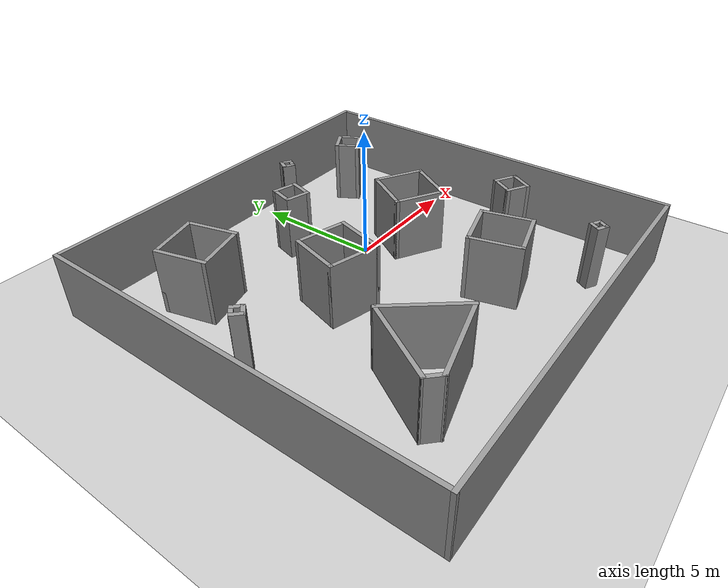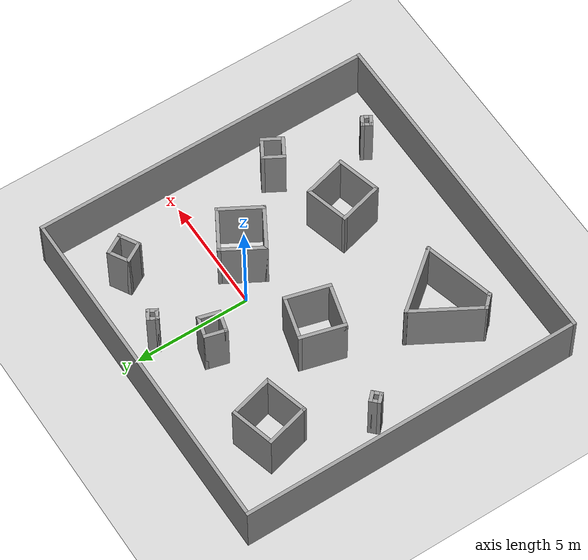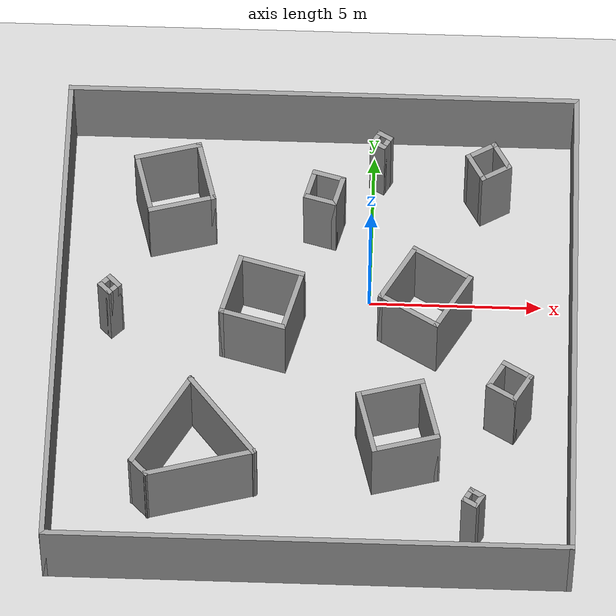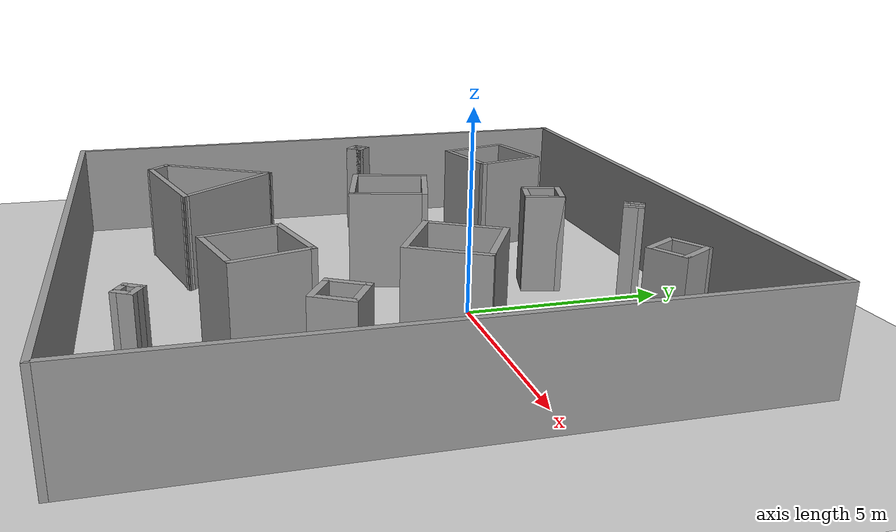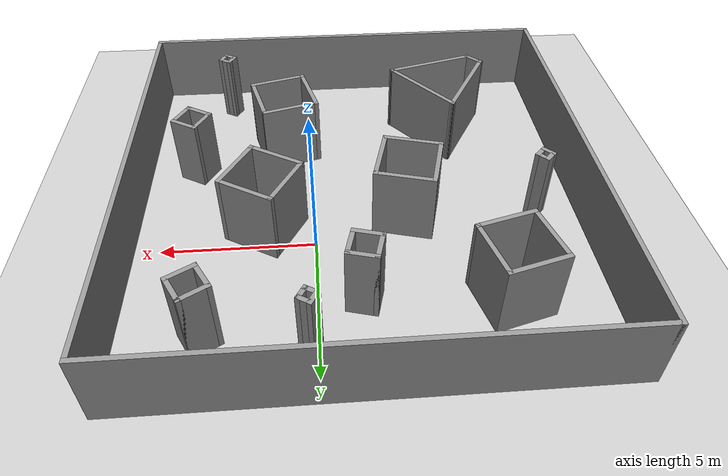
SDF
<sdf version="1.7">
 <world name="default">
  <light name="sun" type="directional">
   <pose>0 0 10 0 -0 0</pose>
   <diffuse>0.8 0.8 0.8 1</diffuse>
   <specular>0.2 0.2 0.2 1</specular>
   <attenuation>
    <range>1000</range>
    <constant>0.9</constant>
    <linear>0.01</linear>
    <quadratic>0.001</quadratic>
   </attenuation>
   <direction>-0.5 0.1 -0.9</direction>
   <spot><inner_angle>0</inner_angle><outer_angle>0</outer_angle><falloff>0</falloff></spot>
  </light>
  <model name="ground_plane">
   <static>1</static>
   <link name="link">
    <collision name="collision">
     <geometry><plane><normal>0 0 1</normal><size>100 100</size></plane></geometry>
     <surface>
      <contact><collide_bitmask>65535</collide_bitmask></contact>
      <friction><ode><mu>100</mu><mu2>50</mu2></ode></friction>
     </surface>
    </collision>
    <visual name="visual">
     <cast_shadows>0</cast_shadows>
     <geometry><plane><normal>0 0 1</normal><size>100 100</size></plane></geometry>
     <material>
      <script><uri>file://media/materials/scripts/gazebo.material</uri><name>Gazebo/Grey</name></script>
     </material>
    </visual>
   </link>
  </model>
  <gravity>0 0 -9.8</gravity>
  <magnetic_field>6e-06 2.3e-05 -4.2e-05</magnetic_field>
  <atmosphere type="adiabatic"/>
  <physics type="ode">
   <max_step_size>0.001</max_step_size>
   <real_time_factor>1</real_time_factor>
   <real_time_update_rate>1000</real_time_update_rate>
  </physics>
  <scene><ambient>0.4 0.4 0.4 1</ambient><background>0.7 0.7 0.7 1</background><shadows>1</shadows></scene>
  <audio><device>default</device></audio>
  <spherical_coordinates>
   <surface_model>EARTH_WGS84</surface_model>
   <latitude_deg>0</latitude_deg>
   <longitude_deg>0</longitude_deg>
   <elevation>0</elevation>
   <heading_deg>0</heading_deg>
  </spherical_coordinates>
  <model name="mycustom1">
   <pose>-1.52669 -1.7983 0 0 -0 0</pose>
   <link name="Wall_102">
    <collision name="Wall_102_Collision">
     <geometry><box><size>1 0.15 2.5</size></box></geometry>
     <pose>0 0 1.25 0 -0 0</pose>
    </collision>
    <visual name="Wall_102_Visual">
     <pose>0 0 1.25 0 -0 0</pose>
     <geometry><box><size>1 0.15 2.5</size></box></geometry>
     <material>
      <script><uri>file://media/materials/scripts/gazebo.material</uri><name>Gazebo/Grey</name></script>
      <ambient>1 1 1 1</ambient>
     </material>
     <meta><layer>0</layer></meta>
    </visual>
    <pose>0.018094 3.78673 0 0 -0 -0.261799</pose>
   </link>
   <link name="Wall_103">
    <collision name="Wall_103_Collision">
     <geometry><box><size>1 0.15 2.5</size></box></geometry>
     <pose>0 0 1.25 0 -0 0</pose>
    </collision>
    <visual name="Wall_103_Visual">
     <pose>0 0 1.25 0 -0 0</pose>
     <geometry><box><size>1 0.15 2.5</size></box></geometry>
     <material>
      <script><uri>file://media/materials/scripts/gazebo.material</uri><name>Gazebo/Grey</name></script>
      <ambient>1 1 1 1</ambient>
     </material>
     <meta><layer>0</layer></meta>
    </visual>
    <pose>0.53861 4.08725 0 0 -0 1.309</pose>
   </link>
   <link name="Wall_104">
    <collision name="Wall_104_Collision">
     <geometry><box><size>1 0.15 2.5</size></box></geometry>
     <pose>0 0 1.25 0 -0 0</pose>
    </collision>
    <visual name="Wall_104_Visual">
     <pose>0 0 1.25 0 -0 0</pose>
     <geometry><box><size>1 0.15 2.5</size></box></geometry>
     <material>
      <script><uri>file://media/materials/scripts/gazebo.material</uri><name>Gazebo/Grey</name></script>
      <ambient>1 1 1 1</ambient>
     </material>
     <meta><layer>0</layer></meta>
    </visual>
    <pose>0.23809 4.60777 0 0 -0 2.87979</pose>
   </link>
   <link name="Wall_105">
    <collision name="Wall_105_Collision">
     <geometry><box><size>1 0.15 2.5</size></box></geometry>
     <pose>0 0 1.25 0 -0 0</pose>
    </collision>
    <visual name="Wall_105_Visual">
     <pose>0 0 1.25 0 -0 0</pose>
     <geometry><box><size>1 0.15 2.5</size></box></geometry>
     <material>
      <script><uri>file://media/materials/scripts/gazebo.material</uri><name>Gazebo/Grey</name></script>
      <ambient>1 1 1 1</ambient>
     </material>
     <meta><layer>0</layer></meta>
    </visual>
    <pose>-0.282427 4.30725 0 0 -0 -1.8326</pose>
   </link>
   <link name="Wall_107">
    <collision name="Wall_107_Collision">
     <geometry><box><size>1 0.15 2.5</size></box></geometry>
     <pose>0 0 1.25 0 -0 0</pose>
    </collision>
    <visual name="Wall_107_Visual">
     <pose>0 0 1.25 0 -0 0</pose>
     <geometry><box><size>1 0.15 2.5</size></box></geometry>
     <material>
      <script><uri>file://media/materials/scripts/gazebo.material</uri><name>Gazebo/Grey</name></script>
      <ambient>1 1 1 1</ambient>
     </material>
     <meta><layer>0</layer></meta>
    </visual>
    <pose>4.51177 5.03242 0 0 -0 -1.0472</pose>
   </link>
   <link name="Wall_108">
    <collision name="Wall_108_Collision">
     <geometry><box><size>1 0.15 2.5</size></box></geometry>
     <pose>0 0 1.25 0 -0 0</pose>
    </collision>
    <visual name="Wall_108_Visual">
     <pose>0 0 1.25 0 -0 0</pose>
     <geometry><box><size>1 0.15 2.5</size></box></geometry>
     <material>
      <script><uri>file://media/materials/scripts/gazebo.material</uri><name>Gazebo/Grey</name></script>
      <ambient>1 1 1 1</ambient>
     </material>
     <meta><layer>0</layer></meta>
    </visual>
    <pose>5.09233 4.87685 0 0 -0 0.523599</pose>
   </link>
   <link name="Wall_109">
    <collision name="Wall_109_Collision">
     <geometry><box><size>1 0.15 2.5</size></box></geometry>
     <pose>0 0 1.25 0 -0 0</pose>
    </collision>
    <visual name="Wall_109_Visual">
     <pose>0 0 1.25 0 -0 0</pose>
     <geometry><box><size>1 0.15 2.5</size></box></geometry>
     <material>
      <script><uri>file://media/materials/scripts/gazebo.material</uri><name>Gazebo/Grey</name></script>
      <ambient>1 1 1 1</ambient>
     </material>
     <meta><layer>0</layer></meta>
    </visual>
    <pose>5.24789 5.45742 0 0 -0 2.0944</pose>
   </link>
   <link name="Wall_110">
    <collision name="Wall_110_Collision">
     <geometry><box><size>1 0.15 2.5</size></box></geometry>
     <pose>0 0 1.25 0 -0 0</pose>
    </collision>
    <visual name="Wall_110_Visual">
     <pose>0 0 1.25 0 -0 0</pose>
     <geometry><box><size>1 0.15 2.5</size></box></geometry>
     <material>
      <script><uri>file://media/materials/scripts/gazebo.material</uri><name>Gazebo/Grey</name></script>
      <ambient>1 1 1 1</ambient>
     </material>
     <meta><layer>0</layer></meta>
    </visual>
    <pose>4.66733 5.61298 0 0 -0 -2.61799</pose>
   </link>
   <link name="Wall_117">
    <collision name="Wall_117_Collision">
     <geometry><box><size>1 0.15 2.5</size></box></geometry>
     <pose>0 0 1.25 0 -0 0</pose>
    </collision>
    <visual name="Wall_117_Visual">
     <pose>0 0 1.25 0 -0 0</pose>
     <geometry><box><size>1 0.15 2.5</size></box></geometry>
     <material>
      <script><uri>file://media/materials/scripts/gazebo.material</uri><name>Gazebo/Grey</name></script>
      <ambient>1 1 1 1</ambient>
     </material>
     <meta><layer>0</layer></meta>
    </visual>
    <pose>5.2308 -1.90268 0 0 -0 -2.0944</pose>
   </link>
   <link name="Wall_118">
    <collision name="Wall_118_Collision">
     <geometry><box><size>1 0.15 2.5</size></box></geometry>
     <pose>0 0 1.25 0 -0 0</pose>
    </collision>
    <visual name="Wall_118_Visual">
     <pose>0 0 1.25 0 -0 0</pose>
     <geometry><box><size>1 0.15 2.5</size></box></geometry>
     <material>
      <script><uri>file://media/materials/scripts/gazebo.material</uri><name>Gazebo/Grey</name></script>
      <ambient>1 1 1 1</ambient>
     </material>
     <meta><layer>0</layer></meta>
    </visual>
    <pose>5.38636 -2.48324 0 0 -0 -0.523599</pose>
   </link>
   <link name="Wall_119">
    <collision name="Wall_119_Collision">
     <geometry><box><size>1 0.15 2.5</size></box></geometry>
     <pose>0 0 1.25 0 -0 0</pose>
    </collision>
    <visual name="Wall_119_Visual">
     <pose>0 0 1.25 0 -0 0</pose>
     <geometry><box><size>1 0.15 2.5</size></box></geometry>
     <material>
      <script><uri>file://media/materials/scripts/gazebo.material</uri><name>Gazebo/Grey</name></script>
      <ambient>1 1 1 1</ambient>
     </material>
     <meta><layer>0</layer></meta>
    </visual>
    <pose>5.96692 -2.32768 0 0 -0 1.0472</pose>
   </link>
   <link name="Wall_120">
    <collision name="Wall_120_Collision">
     <geometry><box><size>1 0.15 2.5</size></box></geometry>
     <pose>0 0 1.25 0 -0 0</pose>
    </collision>
    <visual name="Wall_120_Visual">
     <pose>0 0 1.25 0 -0 0</pose>
     <geometry><box><size>1 0.15 2.5</size></box></geometry>
     <material>
      <script><uri>file://media/materials/scripts/gazebo.material</uri><name>Gazebo/Grey</name></script>
      <ambient>1 1 1 1</ambient>
     </material>
     <meta><layer>0</layer></meta>
    </visual>
    <pose>5.81136 -1.74711 0 0 -0 2.61799</pose>
   </link>
   <link name="Wall_122">
    <collision name="Wall_122_Collision">
     <geometry><box><size>0.5 0.15 2.5</size></box></geometry>
     <pose>0 0 1.25 0 -0 0</pose>
    </collision>
    <visual name="Wall_122_Visual">
     <pose>0 0 1.25 0 -0 0</pose>
     <geometry><box><size>0.5 0.15 2.5</size></box></geometry>
     <material>
      <script><uri>file://media/materials/scripts/gazebo.material</uri><name>Gazebo/Grey</name></script>
      <ambient>1 1 1 1</ambient>
     </material>
     <meta><layer>0</layer></meta>
    </visual>
    <pose>-6.07066 0.590726 0 0 -0 -0.785398</pose>
   </link>
   <link name="Wall_123">
    <collision name="Wall_123_Collision">
     <geometry><box><size>0.5 0.15 2.5</size></box></geometry>
     <pose>0 0 1.25 0 -0 0</pose>
    </collision>
    <visual name="Wall_123_Visual">
     <pose>0 0 1.25 0 -0 0</pose>
     <geometry><box><size>0.5 0.15 2.5</size></box></geometry>
     <material>
      <script><uri>file://media/materials/scripts/gazebo.material</uri><name>Gazebo/Grey</name></script>
      <ambient>1 1 1 1</ambient>
     </material>
     <meta><layer>0</layer></meta>
    </visual>
    <pose>-5.82317 0.590726 0 0 -0 0.785398</pose>
   </link>
   <link name="Wall_124">
    <collision name="Wall_124_Collision">
     <geometry><box><size>0.5 0.15 2.5</size></box></geometry>
     <pose>0 0 1.25 0 -0 0</pose>
    </collision>
    <visual name="Wall_124_Visual">
     <pose>0 0 1.25 0 -0 0</pose>
     <geometry><box><size>0.5 0.15 2.5</size></box></geometry>
     <material>
      <script><uri>file://media/materials/scripts/gazebo.material</uri><name>Gazebo/Grey</name></script>
      <ambient>1 1 1 1</ambient>
     </material>
     <meta><layer>0</layer></meta>
    </visual>
    <pose>-5.82317 0.838213 0 0 -0 2.35619</pose>
   </link>
   <link name="Wall_125">
    <collision name="Wall_125_Collision">
     <geometry><box><size>0.5 0.15 2.5</size></box></geometry>
     <pose>0 0 1.25 0 -0 0</pose>
    </collision>
    <visual name="Wall_125_Visual">
     <pose>0 0 1.25 0 -0 0</pose>
     <geometry><box><size>0.5 0.15 2.5</size></box></geometry>
     <material>
      <script><uri>file://media/materials/scripts/gazebo.material</uri><name>Gazebo/Grey</name></script>
      <ambient>1 1 1 1</ambient>
     </material>
     <meta><layer>0</layer></meta>
    </visual>
    <pose>-6.07066 0.838213 0 0 -0 -2.35619</pose>
   </link>
   <link name="Wall_127">
    <collision name="Wall_127_Collision">
     <geometry><box><size>0.5 0.15 2.5</size></box></geometry>
     <pose>0 0 1.25 0 -0 0</pose>
    </collision>
    <visual name="Wall_127_Visual">
     <pose>0 0 1.25 0 -0 0</pose>
     <geometry><box><size>0.5 0.15 2.5</size></box></geometry>
     <material>
      <script><uri>file://media/materials/scripts/gazebo.material</uri><name>Gazebo/Grey</name></script>
      <ambient>1 1 1 1</ambient>
     </material>
     <meta><layer>0</layer></meta>
    </visual>
    <pose>4.48406 -5.8504 0 0 -0 -2.0944</pose>
   </link>
   <link name="Wall_128">
    <collision name="Wall_128_Collision">
     <geometry><box><size>0.5 0.15 2.5</size></box></geometry>
     <pose>0 0 1.25 0 -0 0</pose>
    </collision>
    <visual name="Wall_128_Visual">
     <pose>0 0 1.25 0 -0 0</pose>
     <geometry><box><size>0.5 0.15 2.5</size></box></geometry>
     <material>
      <script><uri>file://media/materials/scripts/gazebo.material</uri><name>Gazebo/Grey</name></script>
      <ambient>1 1 1 1</ambient>
     </material>
     <meta><layer>0</layer></meta>
    </visual>
    <pose>4.54812 -6.08946 0 0 -0 -0.523599</pose>
   </link>
   <link name="Wall_132">
    <collision name="Wall_132_Collision">
     <geometry><box><size>0.5 0.15 2.5</size></box></geometry>
     <pose>0 0 1.25 0 -0 0</pose>
    </collision>
    <visual name="Wall_132_Visual">
     <pose>0 0 1.25 0 -0 0</pose>
     <geometry><box><size>0.5 0.15 2.5</size></box></geometry>
     <material>
      <script><uri>file://media/materials/scripts/gazebo.material</uri><name>Gazebo/Grey</name></script>
      <ambient>1 1 1 1</ambient>
     </material>
     <meta><layer>0</layer></meta>
    </visual>
    <pose>4.72311 -5.78635 0 0 -0 -0.523599</pose>
   </link>
   <link name="Wall_133">
    <collision name="Wall_133_Collision">
     <geometry><box><size>0.5 0.15 2.5</size></box></geometry>
     <pose>0 0 1.25 0 -0 0</pose>
    </collision>
    <visual name="Wall_133_Visual">
     <pose>0 0 1.25 0 -0 0</pose>
     <geometry><box><size>0.5 0.15 2.5</size></box></geometry>
     <material>
      <script><uri>file://media/materials/scripts/gazebo.material</uri><name>Gazebo/Grey</name></script>
      <ambient>1 1 1 1</ambient>
     </material>
     <meta><layer>0</layer></meta>
    </visual>
    <pose>4.78717 -6.0254 0 0 -0 -2.0944</pose>
   </link>
   <link name="Wall_135">
    <collision name="Wall_135_Collision">
     <geometry><box><size>0.5 0.15 2.5</size></box></geometry>
     <pose>0 0 1.25 0 -0 0</pose>
    </collision>
    <visual name="Wall_135_Visual">
     <pose>0 0 1.25 0 -0 0</pose>
     <geometry><box><size>0.5 0.15 2.5</size></box></geometry>
     <material>
      <script><uri>file://media/materials/scripts/gazebo.material</uri><name>Gazebo/Grey</name></script>
      <ambient>1 1 1 1</ambient>
     </material>
     <meta><layer>0</layer></meta>
    </visual>
    <pose>1.83339 6.03862 0 0 -0 -0.523599</pose>
   </link>
   <link name="Wall_138">
    <collision name="Wall_138_Collision">
     <geometry><box><size>0.5 0.15 2.5</size></box></geometry>
     <pose>0 0 1.25 0 -0 0</pose>
    </collision>
    <visual name="Wall_138_Visual">
     <pose>0 0 1.25 0 -0 0</pose>
     <geometry><box><size>0.5 0.15 2.5</size></box></geometry>
     <material>
      <script><uri>file://media/materials/scripts/gazebo.material</uri><name>Gazebo/Grey</name></script>
      <ambient>1 1 1 1</ambient>
     </material>
     <meta><layer>0</layer></meta>
    </visual>
    <pose>1.59433 5.97457 0 0 -0 -2.0944</pose>
   </link>
   <link name="Wall_139">
    <collision name="Wall_139_Collision">
     <geometry><box><size>0.5 0.15 2.5</size></box></geometry>
     <pose>0 0 1.25 0 -0 0</pose>
    </collision>
    <visual name="Wall_139_Visual">
     <pose>0 0 1.25 0 -0 0</pose>
     <geometry><box><size>0.5 0.15 2.5</size></box></geometry>
     <material>
      <script><uri>file://media/materials/scripts/gazebo.material</uri><name>Gazebo/Grey</name></script>
      <ambient>1 1 1 1</ambient>
     </material>
     <meta><layer>0</layer></meta>
    </visual>
    <pose>1.65838 5.73551 0 0 -0 -0.523599</pose>
   </link>
   <link name="Wall_140">
    <collision name="Wall_140_Collision">
     <geometry><box><size>0.5 0.15 2.5</size></box></geometry>
     <pose>0 0 1.25 0 -0 0</pose>
    </collision>
    <visual name="Wall_140_Visual">
     <pose>0 0 1.25 0 -0 0</pose>
     <geometry><box><size>0.5 0.15 2.5</size></box></geometry>
     <material>
      <script><uri>file://media/materials/scripts/gazebo.material</uri><name>Gazebo/Grey</name></script>
      <ambient>1 1 1 1</ambient>
     </material>
     <meta><layer>0</layer></meta>
    </visual>
    <pose>1.89744 5.79957 0 0 -0 1.0472</pose>
   </link>
   <link name="Wall_58">
    <collision name="Wall_58_Collision">
     <geometry><box><size>15 0.15 2.5</size></box></geometry>
     <pose>0 0 1.25 0 -0 0</pose>
    </collision>
    <visual name="Wall_58_Visual">
     <pose>0 0 1.25 0 -0 0</pose>
     <geometry><box><size>15 0.15 2.5</size></box></geometry>
     <material>
      <script><uri>file://media/materials/scripts/gazebo.material</uri><name>Gazebo/Grey</name></script>
      <ambient>1 1 1 1</ambient>
     </material>
     <meta><layer>0</layer></meta>
    </visual>
    <pose>0 -7.425 0 0 -0 0</pose>
   </link>
   <link name="Wall_60">
    <collision name="Wall_60_Collision">
     <geometry><box><size>15 0.15 2.5</size></box></geometry>
     <pose>0 0 1.25 0 -0 0</pose>
    </collision>
    <visual name="Wall_60_Visual">
     <pose>0 0 1.25 0 -0 0</pose>
     <geometry><box><size>15 0.15 2.5</size></box></geometry>
     <material>
      <script><uri>file://media/materials/scripts/gazebo.material</uri><name>Gazebo/Grey</name></script>
      <ambient>1 1 1 1</ambient>
     </material>
     <meta><layer>0</layer></meta>
    </visual>
    <pose>-7.425 0 0 0 -0 1.5708</pose>
   </link>
   <link name="Wall_62">
    <collision name="Wall_62_Collision">
     <geometry><box><size>15 0.15 2.5</size></box></geometry>
     <pose>0 0 1.25 0 -0 0</pose>
    </collision>
    <visual name="Wall_62_Visual">
     <pose>0 0 1.25 0 -0 0</pose>
     <geometry><box><size>15 0.15 2.5</size></box></geometry>
     <material>
      <script><uri>file://media/materials/scripts/gazebo.material</uri><name>Gazebo/Grey</name></script>
      <ambient>1 1 1 1</ambient>
     </material>
     <meta><layer>0</layer></meta>
    </visual>
    <pose>0 7.425 0 0 -0 0</pose>
   </link>
   <link name="Wall_64">
    <collision name="Wall_64_Collision">
     <geometry><box><size>15 0.15 2.5</size></box></geometry>
     <pose>0 0 1.25 0 -0 0</pose>
    </collision>
    <visual name="Wall_64_Visual">
     <pose>0 0 1.25 0 -0 0</pose>
     <geometry><box><size>15 0.15 2.5</size></box></geometry>
     <material>
      <script><uri>file://media/materials/scripts/gazebo.material</uri><name>Gazebo/Grey</name></script>
      <ambient>1 1 1 1</ambient>
     </material>
     <meta><layer>0</layer></meta>
    </visual>
    <pose>7.425 0 0 0 -0 -1.5708</pose>
   </link>
   <link name="Wall_71">
    <collision name="Wall_71_Collision">
     <geometry><box><size>0.75 0.15 2.5</size></box></geometry>
     <pose>0 0 1.25 0 -0 0</pose>
    </collision>
    <visual name="Wall_71_Visual">
     <pose>0 0 1.25 0 -0 0</pose>
     <geometry><box><size>0.75 0.15 2.5</size></box></geometry>
     <material>
      <script><uri>file://media/materials/scripts/gazebo.material</uri><name>Gazebo/Grey</name></script>
      <ambient>1 1 1 1</ambient>
     </material>
     <meta><layer>0</layer></meta>
    </visual>
    <pose>-4.81708 -5.23529 0 0 -0 -0.785398</pose>
   </link>
   <link name="Wall_72">
    <collision name="Wall_72_Collision">
     <geometry><box><size>3.25 0.15 2.5</size></box></geometry>
     <pose>0 0 1.25 0 -0 0</pose>
    </collision>
    <visual name="Wall_72_Visual">
     <pose>0 0 1.25 0 -0 0</pose>
     <geometry><box><size>3.25 0.15 2.5</size></box></geometry>
     <material>
      <script><uri>file://media/materials/scripts/gazebo.material</uri><name>Gazebo/Grey</name></script>
      <ambient>1 1 1 1</ambient>
     </material>
     <meta><layer>0</layer></meta>
    </visual>
    <pose>-3.10776 -5.04626 0 0 -0 0.261799</pose>
   </link>
   <link name="Wall_74">
    <collision name="Wall_74_Collision">
     <geometry><box><size>3.25 0.15 2.5</size></box></geometry>
     <pose>0 0 1.25 0 -0 0</pose>
    </collision>
    <visual name="Wall_74_Visual">
     <pose>0 0 1.25 0 -0 0</pose>
     <geometry><box><size>3.25 0.15 2.5</size></box></geometry>
     <material>
      <script><uri>file://media/materials/scripts/gazebo.material</uri><name>Gazebo/Grey</name></script>
      <ambient>1 1 1 1</ambient>
     </material>
     <meta><layer>0</layer></meta>
    </visual>
    <pose>-4.25421 -3.68082 0 0 -0 1.0472</pose>
   </link>
   <link name="Wall_75">
    <collision name="Wall_75_Collision">
     <geometry><box><size>3.11854 0.15 2.5</size></box></geometry>
     <pose>0 0 1.25 0 -0 0</pose>
    </collision>
    <visual name="Wall_75_Visual">
     <pose>0 0 1.25 0 -0 0</pose>
     <geometry><box><size>3.11854 0.15 2.5</size></box></geometry>
     <material>
      <script><uri>file://media/materials/scripts/gazebo.material</uri><name>Gazebo/Grey</name></script>
      <ambient>1 1 1 1</ambient>
     </material>
     <meta><layer>0</layer></meta>
    </visual>
    <pose>-2.54489 -3.49178 0 0 -0 -0.889913</pose>
   </link>
   <link name="Wall_77">
    <collision name="Wall_77_Collision">
     <geometry><box><size>2 0.15 2.5</size></box></geometry>
     <pose>0 0 1.25 0 -0 0</pose>
    </collision>
    <visual name="Wall_77_Visual">
     <pose>0 0 1.25 0 -0 0</pose>
     <geometry><box><size>2 0.15 2.5</size></box></geometry>
     <material>
      <script><uri>file://media/materials/scripts/gazebo.material</uri><name>Gazebo/Grey</name></script>
      <ambient>1 1 1 1</ambient>
     </material>
     <meta><layer>0</layer></meta>
    </visual>
    <pose>-1.80116 -0.299447 0 0 -0 -0.261799</pose>
   </link>
   <link name="Wall_78">
    <collision name="Wall_78_Collision">
     <geometry><box><size>2 0.15 2.5</size></box></geometry>
     <pose>0 0 1.25 0 -0 0</pose>
    </collision>
    <visual name="Wall_78_Visual">
     <pose>0 0 1.25 0 -0 0</pose>
     <geometry><box><size>2 0.15 2.5</size></box></geometry>
     <material>
      <script><uri>file://media/materials/scripts/gazebo.material</uri><name>Gazebo/Grey</name></script>
      <ambient>1 1 1 1</ambient>
     </material>
     <meta><layer>0</layer></meta>
    </visual>
    <pose>-0.66827 0.354627 0 0 -0 1.309</pose>
   </link>
   <link name="Wall_79">
    <collision name="Wall_79_Collision">
     <geometry><box><size>2 0.15 2.5</size></box></geometry>
     <pose>0 0 1.25 0 -0 0</pose>
    </collision>
    <visual name="Wall_79_Visual">
     <pose>0 0 1.25 0 -0 0</pose>
     <geometry><box><size>2 0.15 2.5</size></box></geometry>
     <material>
      <script><uri>file://media/materials/scripts/gazebo.material</uri><name>Gazebo/Grey</name></script>
      <ambient>1 1 1 1</ambient>
     </material>
     <meta><layer>0</layer></meta>
    </visual>
    <pose>-1.32234 1.48752 0 0 -0 2.87979</pose>
   </link>
   <link name="Wall_80">
    <collision name="Wall_80_Collision">
     <geometry><box><size>2 0.15 2.5</size></box></geometry>
     <pose>0 0 1.25 0 -0 0</pose>
    </collision>
    <visual name="Wall_80_Visual">
     <pose>0 0 1.25 0 -0 0</pose>
     <geometry><box><size>2 0.15 2.5</size></box></geometry>
     <material>
      <script><uri>file://media/materials/scripts/gazebo.material</uri><name>Gazebo/Grey</name></script>
      <ambient>1 1 1 1</ambient>
     </material>
     <meta><layer>0</layer></meta>
    </visual>
    <pose>-2.45523 0.833442 0 0 -0 -1.8326</pose>
   </link>
   <link name="Wall_82">
    <collision name="Wall_82_Collision">
     <geometry><box><size>2 0.15 2.5</size></box></geometry>
     <pose>0 0 1.25 0 -0 0</pose>
    </collision>
    <visual name="Wall_82_Visual">
     <pose>0 0 1.25 0 -0 0</pose>
     <geometry><box><size>2 0.15 2.5</size></box></geometry>
     <material>
      <script><uri>file://media/materials/scripts/gazebo.material</uri><name>Gazebo/Grey</name></script>
      <ambient>1 1 1 1</ambient>
     </material>
     <meta><layer>0</layer></meta>
    </visual>
    <pose>1.55677 -3.58207 0 0 -0 -1.309</pose>
   </link>
   <link name="Wall_83">
    <collision name="Wall_83_Collision">
     <geometry><box><size>2 0.15 2.5</size></box></geometry>
     <pose>0 0 1.25 0 -0 0</pose>
    </collision>
    <visual name="Wall_83_Visual">
     <pose>0 0 1.25 0 -0 0</pose>
     <geometry><box><size>2 0.15 2.5</size></box></geometry>
     <material>
      <script><uri>file://media/materials/scripts/gazebo.material</uri><name>Gazebo/Grey</name></script>
      <ambient>1 1 1 1</ambient>
     </material>
     <meta><layer>0</layer></meta>
    </visual>
    <pose>2.68966 -4.23615 0 0 -0 0.261799</pose>
   </link>
   <link name="Wall_84">
    <collision name="Wall_84_Collision">
     <geometry><box><size>2 0.15 2.5</size></box></geometry>
     <pose>0 0 1.25 0 -0 0</pose>
    </collision>
    <visual name="Wall_84_Visual">
     <pose>0 0 1.25 0 -0 0</pose>
     <geometry><box><size>2 0.15 2.5</size></box></geometry>
     <material>
      <script><uri>file://media/materials/scripts/gazebo.material</uri><name>Gazebo/Grey</name></script>
      <ambient>1 1 1 1</ambient>
     </material>
     <meta><layer>0</layer></meta>
    </visual>
    <pose>3.34373 -3.10326 0 0 -0 1.8326</pose>
   </link>
   <link name="Wall_85">
    <collision name="Wall_85_Collision">
     <geometry><box><size>2 0.15 2.5</size></box></geometry>
     <pose>0 0 1.25 0 -0 0</pose>
    </collision>
    <visual name="Wall_85_Visual">
     <pose>0 0 1.25 0 -0 0</pose>
     <geometry><box><size>2 0.15 2.5</size></box></geometry>
     <material>
      <script><uri>file://media/materials/scripts/gazebo.material</uri><name>Gazebo/Grey</name></script>
      <ambient>1 1 1 1</ambient>
     </material>
     <meta><layer>0</layer></meta>
    </visual>
    <pose>2.21084 -2.44918 0 0 -0 -2.87979</pose>
   </link>
   <link name="Wall_87">
    <collision name="Wall_87_Collision">
     <geometry><box><size>2 0.15 2.5</size></box></geometry>
     <pose>0 0 1.25 0 -0 0</pose>
    </collision>
    <visual name="Wall_87_Visual">
     <pose>0 0 1.25 0 -0 0</pose>
     <geometry><box><size>2 0.15 2.5</size></box></geometry>
     <material>
      <script><uri>file://media/materials/scripts/gazebo.material</uri><name>Gazebo/Grey</name></script>
      <ambient>1 1 1 1</ambient>
     </material>
     <meta><layer>0</layer></meta>
    </visual>
    <pose>2.67181 0.134599 0 0 -0 -0.523599</pose>
   </link>
   <link name="Wall_88">
    <collision name="Wall_88_Collision">
     <geometry><box><size>2 0.15 2.5</size></box></geometry>
     <pose>0 0 1.25 0 -0 0</pose>
    </collision>
    <visual name="Wall_88_Visual">
     <pose>0 0 1.25 0 -0 0</pose>
     <geometry><box><size>2 0.15 2.5</size></box></geometry>
     <material>
      <script><uri>file://media/materials/scripts/gazebo.material</uri><name>Gazebo/Grey</name></script>
      <ambient>1 1 1 1</ambient>
     </material>
     <meta><layer>0</layer></meta>
    </visual>
    <pose>3.93539 0.473172 0 0 -0 1.0472</pose>
   </link>
   <link name="Wall_89">
    <collision name="Wall_89_Collision">
     <geometry><box><size>2 0.15 2.5</size></box></geometry>
     <pose>0 0 1.25 0 -0 0</pose>
    </collision>
    <visual name="Wall_89_Visual">
     <pose>0 0 1.25 0 -0 0</pose>
     <geometry><box><size>2 0.15 2.5</size></box></geometry>
     <material>
      <script><uri>file://media/materials/scripts/gazebo.material</uri><name>Gazebo/Grey</name></script>
      <ambient>1 1 1 1</ambient>
     </material>
     <meta><layer>0</layer></meta>
    </visual>
    <pose>3.59681 1.73675 0 0 -0 2.61799</pose>
   </link>
   <link name="Wall_90">
    <collision name="Wall_90_Collision">
     <geometry><box><size>2 0.15 2.5</size></box></geometry>
     <pose>0 0 1.25 0 -0 0</pose>
    </collision>
    <visual name="Wall_90_Visual">
     <pose>0 0 1.25 0 -0 0</pose>
     <geometry><box><size>2 0.15 2.5</size></box></geometry>
     <material>
      <script><uri>file://media/materials/scripts/gazebo.material</uri><name>Gazebo/Grey</name></script>
      <ambient>1 1 1 1</ambient>
     </material>
     <meta><layer>0</layer></meta>
    </visual>
    <pose>2.33324 1.39817 0 0 -0 -2.0944</pose>
   </link>
   <link name="Wall_92">
    <collision name="Wall_92_Collision">
     <geometry><box><size>2 0.15 2.5</size></box></geometry>
     <pose>0 0 1.25 0 -0 0</pose>
    </collision>
    <visual name="Wall_92_Visual">
     <pose>0 0 1.25 0 -0 0</pose>
     <geometry><box><size>2 0.15 2.5</size></box></geometry>
     <material>
      <script><uri>file://media/materials/scripts/gazebo.material</uri><name>Gazebo/Grey</name></script>
      <ambient>1 1 1 1</ambient>
     </material>
     <meta><layer>0</layer></meta>
    </visual>
    <pose>-4.47288 5.30576 0 0 -0 0.261799</pose>
   </link>
   <link name="Wall_93">
    <collision name="Wall_93_Collision">
     <geometry><box><size>2 0.15 2.5</size></box></geometry>
     <pose>0 0 1.25 0 -0 0</pose>
    </collision>
    <visual name="Wall_93_Visual">
     <pose>0 0 1.25 0 -0 0</pose>
     <geometry><box><size>2 0.15 2.5</size></box></geometry>
     <material>
      <script><uri>file://media/materials/scripts/gazebo.material</uri><name>Gazebo/Grey</name></script>
      <ambient>1 1 1 1</ambient>
     </material>
     <meta><layer>0</layer></meta>
    </visual>
    <pose>-3.33999 4.65168 0 0 -0 -1.309</pose>
   </link>
   <link name="Wall_94">
    <collision name="Wall_94_Collision">
     <geometry><box><size>2 0.15 2.5</size></box></geometry>
     <pose>0 0 1.25 0 -0 0</pose>
    </collision>
    <visual name="Wall_94_Visual">
     <pose>0 0 1.25 0 -0 0</pose>
     <geometry><box><size>2 0.15 2.5</size></box></geometry>
     <material>
      <script><uri>file://media/materials/scripts/gazebo.material</uri><name>Gazebo/Grey</name></script>
      <ambient>1 1 1 1</ambient>
     </material>
     <meta><layer>0</layer></meta>
    </visual>
    <pose>-3.99406 3.51879 0 0 -0 -2.87979</pose>
   </link>
   <link name="Wall_95">
    <collision name="Wall_95_Collision">
     <geometry><box><size>2 0.15 2.5</size></box></geometry>
     <pose>0 0 1.25 0 -0 0</pose>
    </collision>
    <visual name="Wall_95_Visual">
     <pose>0 0 1.25 0 -0 0</pose>
     <geometry><box><size>2 0.15 2.5</size></box></geometry>
     <material>
      <script><uri>file://media/materials/scripts/gazebo.material</uri><name>Gazebo/Grey</name></script>
      <ambient>1 1 1 1</ambient>
     </material>
     <meta><layer>0</layer></meta>
    </visual>
    <pose>-5.12695 4.17287 0 0 -0 1.8326</pose>
   </link>
   <static>1</static>
  </model>
 </world>
</sdf>
